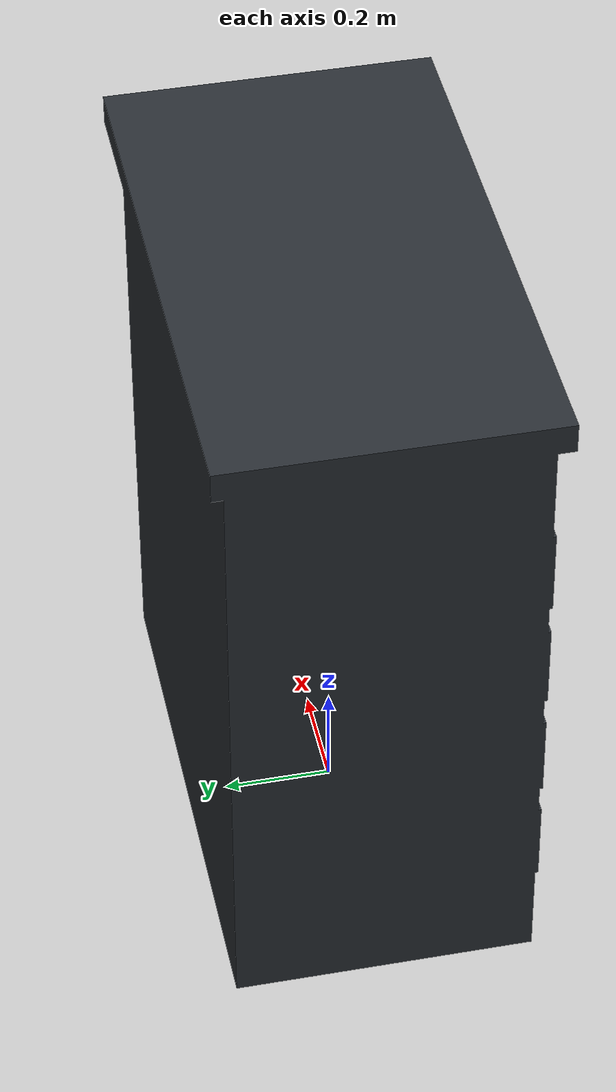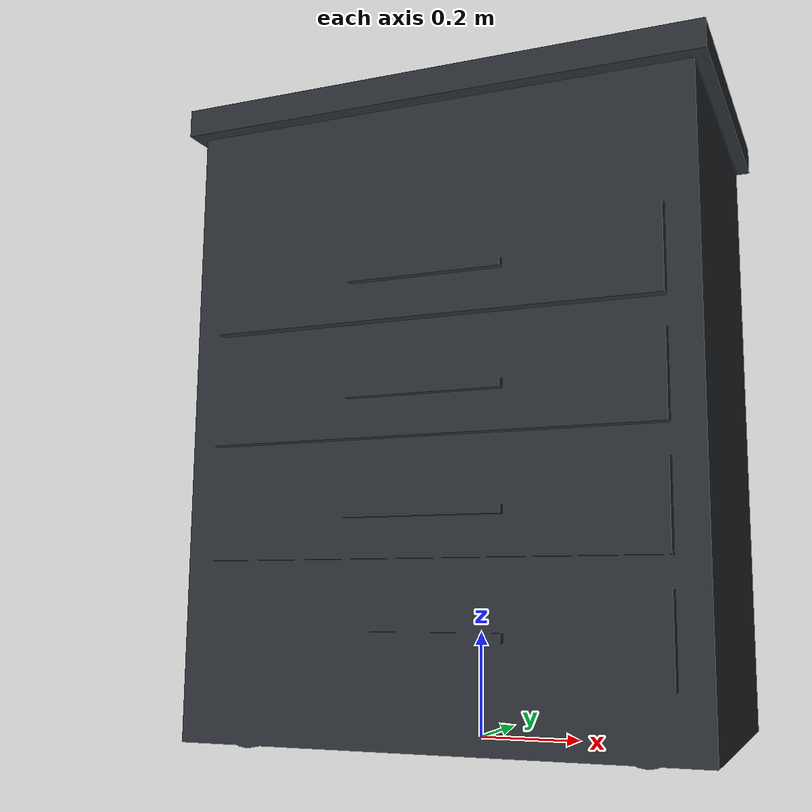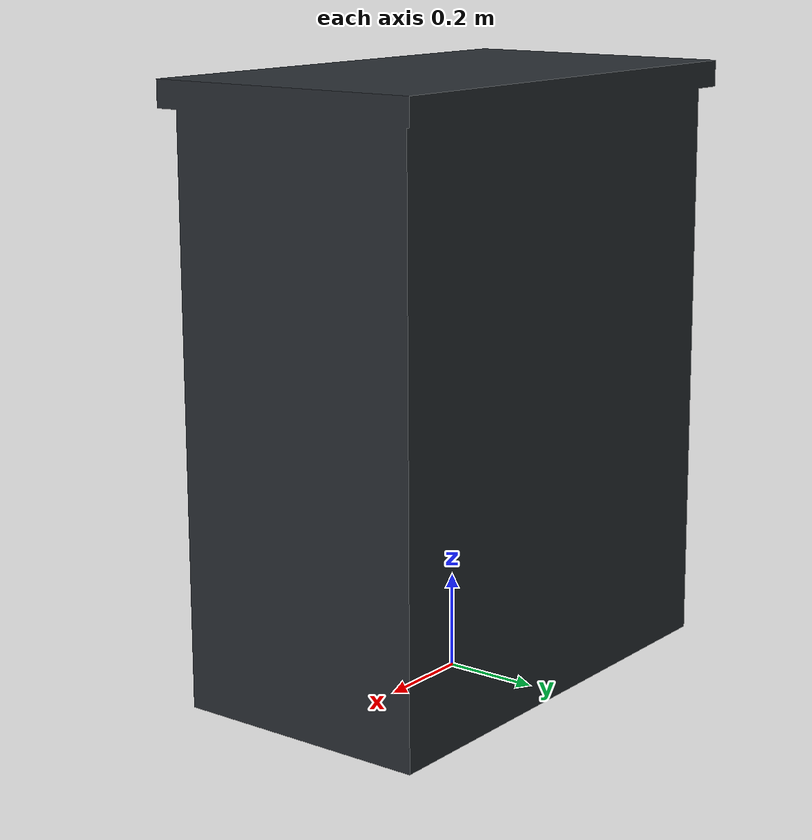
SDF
<?xml version='1.0' encoding='utf-8'?>
<sdf version="1.6">
  <model name="tool_cabinet">
    <static>true</static>
    <link name="link">
      <visual name="detailed_mesh_visual">
        <geometry>
          <mesh>
            <uri>model://tool_cabinet/meshes/tool_cabinet.stl</uri>
          </mesh>
        </geometry>
      <material><ambient>0.16 0.18 0.2 1</ambient><diffuse>0.16 0.18 0.2 1</diffuse><specular>0.08 0.08 0.08 1</specular></material></visual>
      <collision name="body_collision">
        <pose>0 0 0.6 0 0 0</pose>
        <geometry>
          <box>
            <size>1.0 0.55 1.2</size>
          </box>
        </geometry>
      </collision>
      <collision name="top_collision">
        <pose>0 0 1.23 0 0 0</pose>
        <geometry>
          <box>
            <size>1.05 0.60 0.06</size>
          </box>
        </geometry>
      </collision>
    </link>
  </model>
</sdf>
